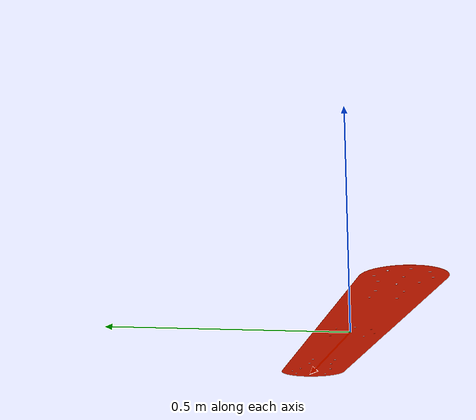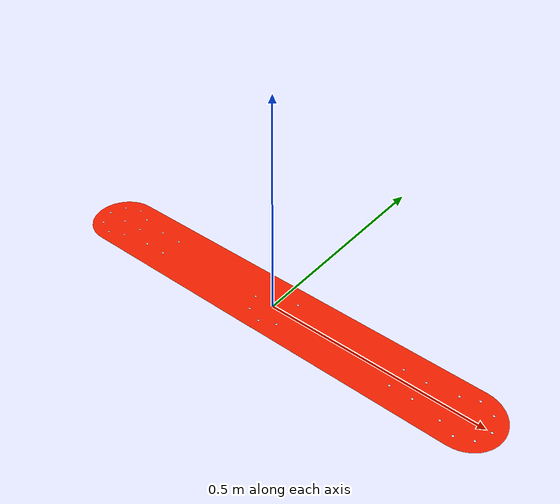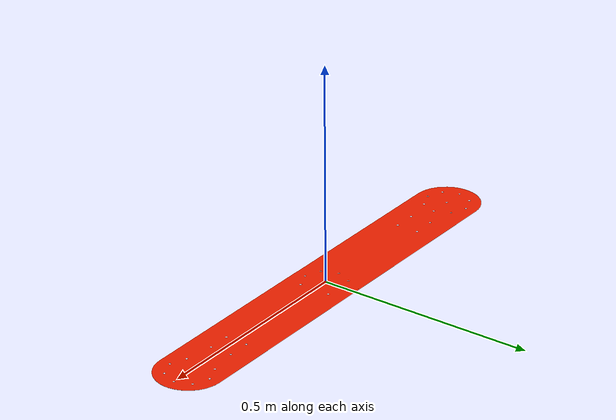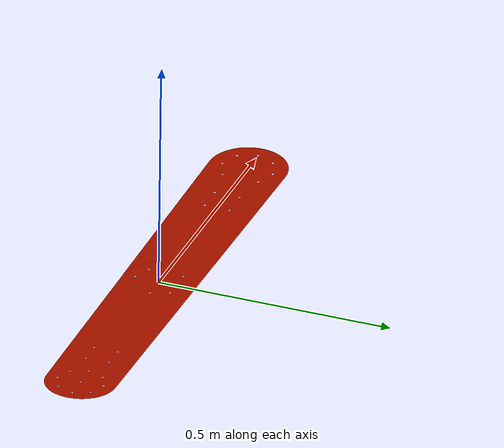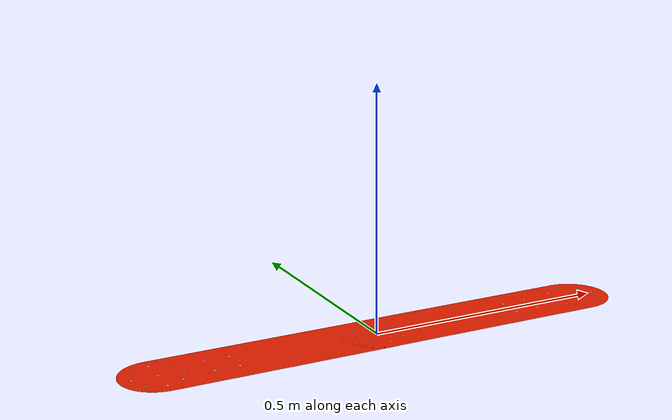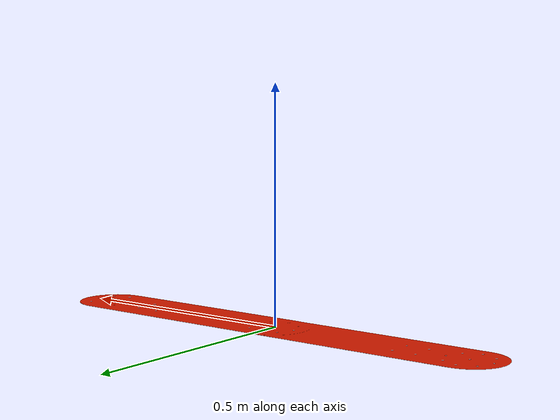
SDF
<?xml version="1.0" ?>
<sdf version="1.5">
<!-- SDF file for the marker -->
<model name="marker">
  <static>true</static>
  <link name="marker_link">

  <visual name="marker">
    <pose>0 0 0 0 0 0</pose>
    <geometry>
      <mesh><uri>model://marker/meshes/marker.dae</uri><scale>1 1 1</scale></mesh>
    </geometry>
  </visual>

  </link>
</model>
</sdf>
